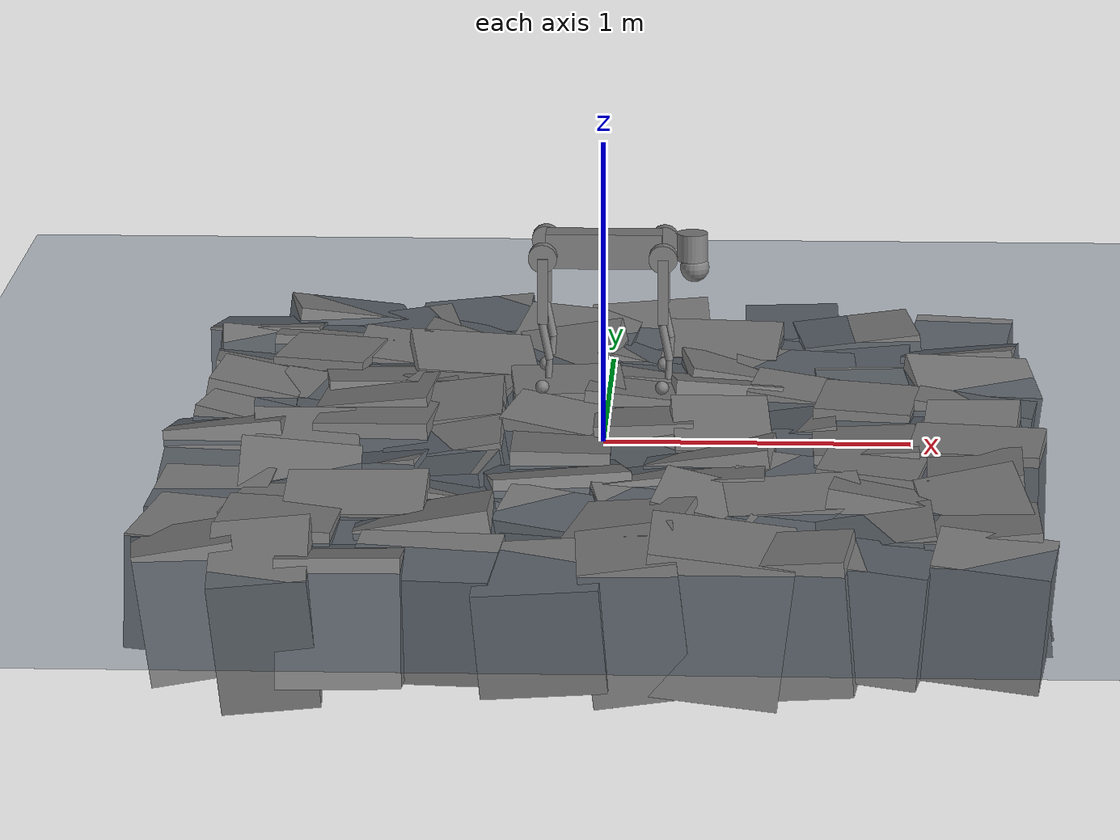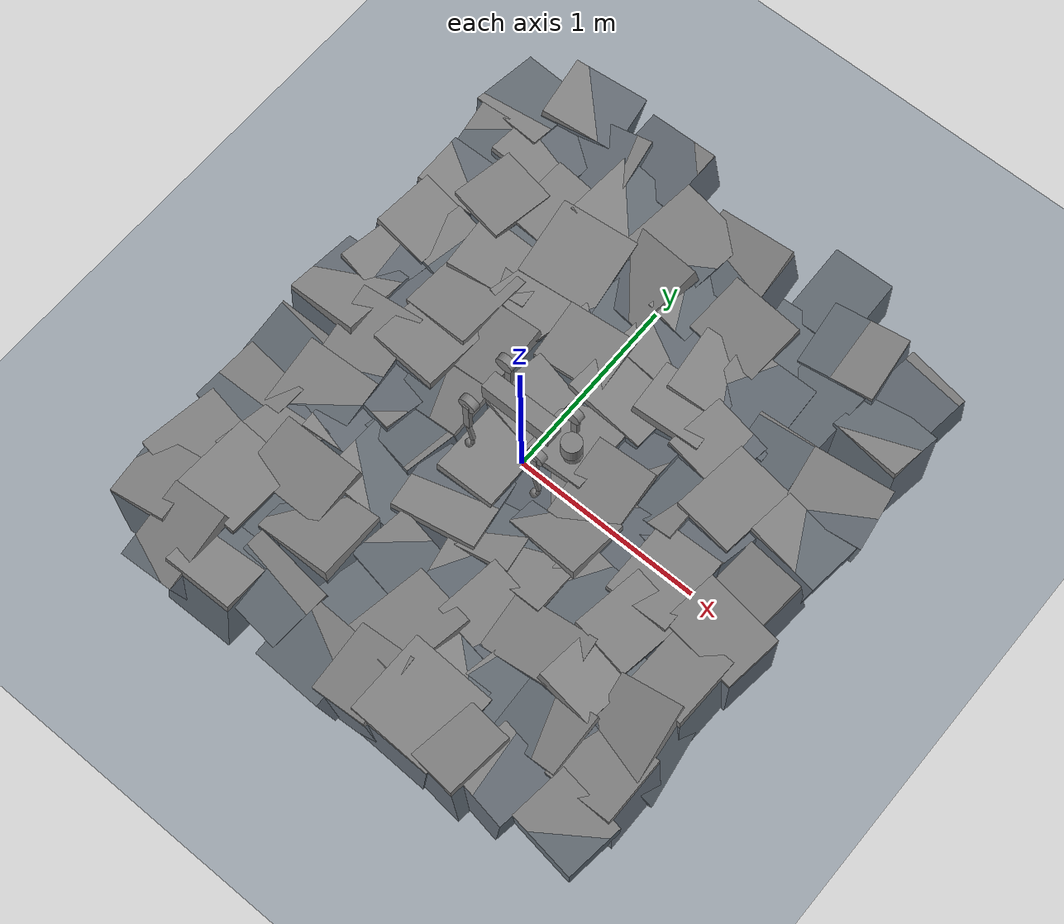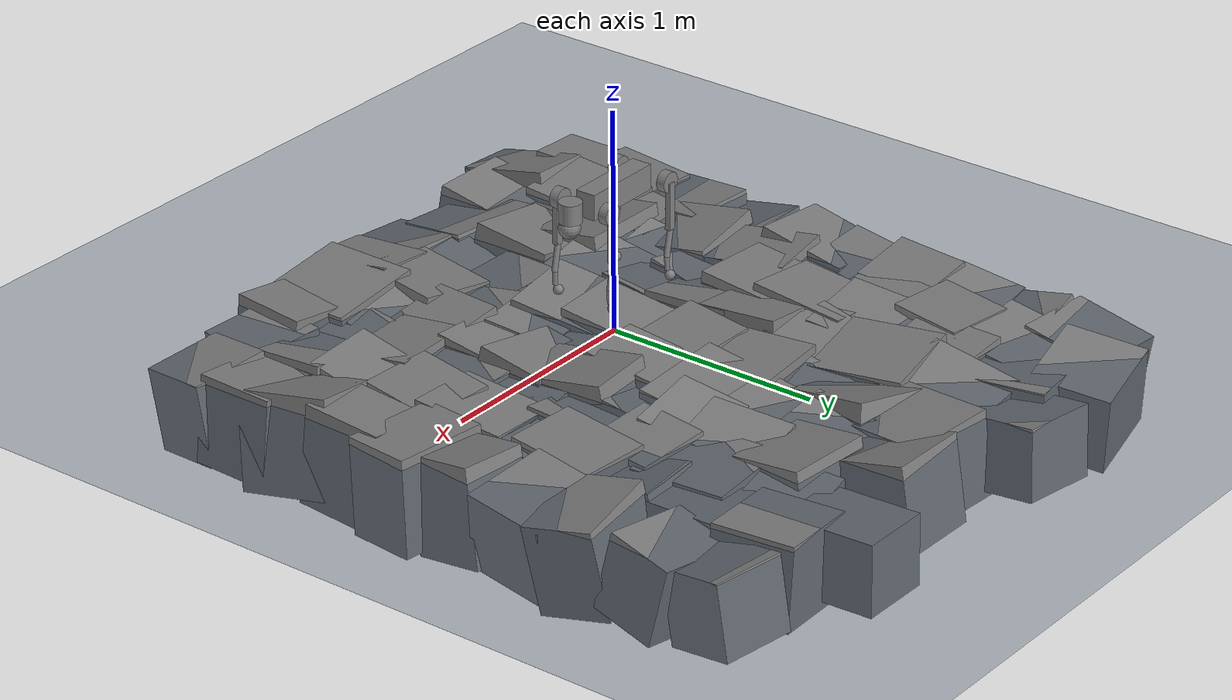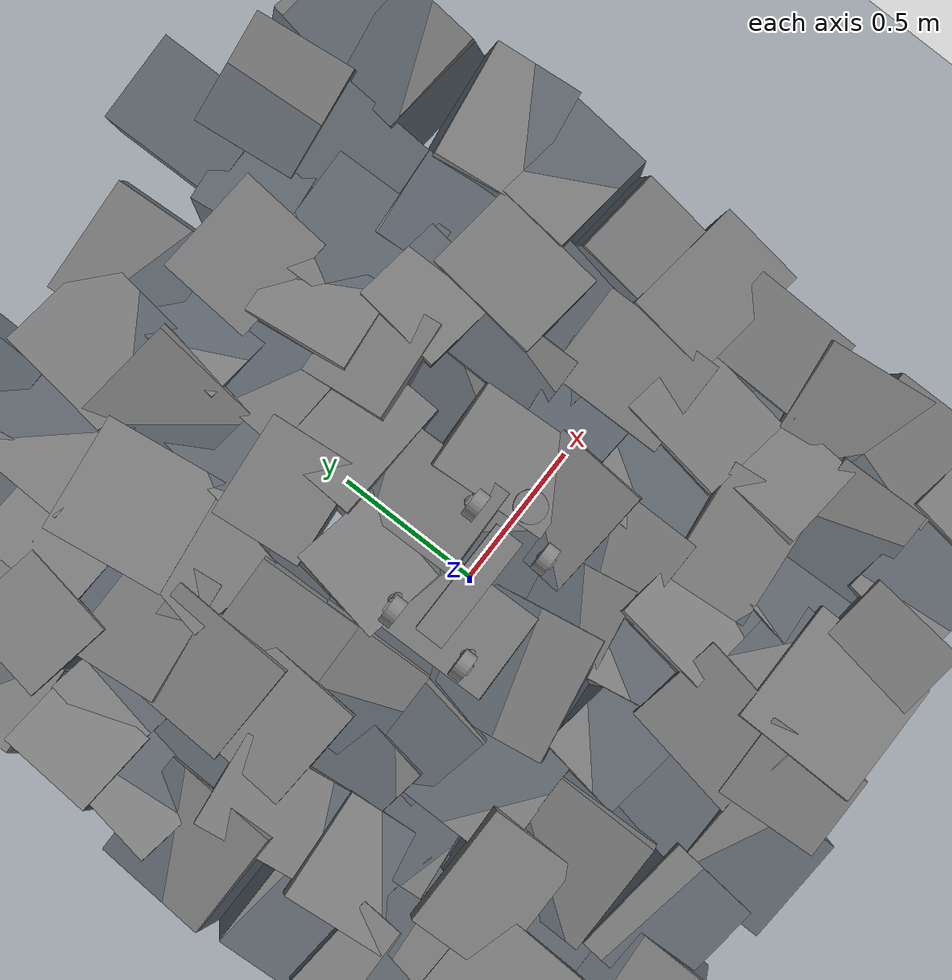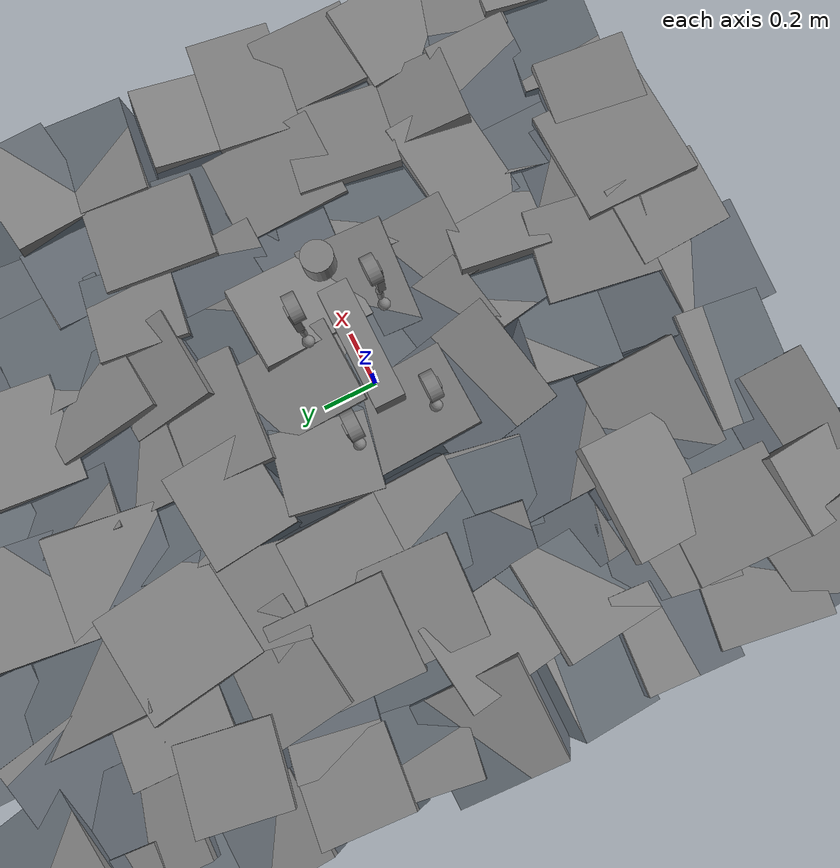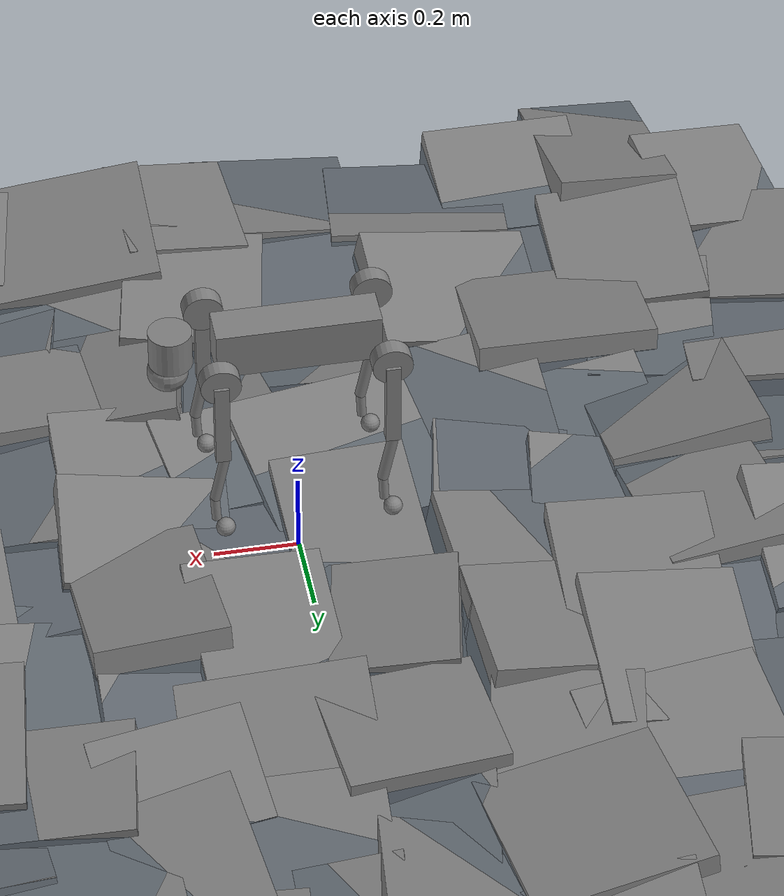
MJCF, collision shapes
<mujoco model="go2 scene">
  <include file="go2.xml" />

  <statistic center="0 0 0.1" extent="0.8" />

  <visual>
    <headlight diffuse="0.6 0.6 0.6" ambient="0.3 0.3 0.3" specular="0 0 0" />
    <rgba haze="0.15 0.25 0.35 1" />
    <global azimuth="-130" elevation="-20" />
  </visual>

  <asset>
    <texture type="skybox" builtin="gradient" rgb1="0.3 0.5 0.7" rgb2="0 0 0" width="512" height="3072" />
    <texture type="2d" name="groundplane" builtin="checker" mark="edge" rgb1="0.2 0.3 0.4" rgb2="0.1 0.2 0.3" markrgb="0.8 0.8 0.8" width="300" height="300" />
    <material name="groundplane" texture="groundplane" texuniform="true" texrepeat="5 5" reflectance="0.2" />
  </asset>

  <worldbody>
    <light pos="0 0 1.5" dir="0 0 -1" directional="true" />
    <geom name="floor" size="0 0 0.05" type="plane" material="groundplane" />
  <geom pos="-1.2304200836680197 -1.1411481662445038 -0.1875" type="box" size="0.15369244909148655 0.17730369953801042 0.2065599356729149" quat="0.9950281246116551 -0.03272921892130598 -0.06742753222850414 0.0655847341855378" /><geom pos="-1.2304200836680197 -0.8760309631619931 -0.1875" type="box" size="0.18509767053117837 0.2102609910016081 0.1871333525612197" quat="0.9963611390440859 0.011661685118724875 0.019775964883568673 -0.08208164786288792" /><geom pos="-1.2304200836680197 -0.5268295472882956 -0.1875" type="box" size="0.17915211086592098 0.182866532464674 0.18494911241374323" quat="0.9979450321557523 0.047034680834500464 0.0032556006696131635 -0.0433918501418337" /><geom pos="-1.2304200836680197 -0.2046684124035616 -0.1875" type="box" size="0.1960684868133751 0.15221288971163183 0.16285439421474324" quat="0.9951650263795967 0.09750686832672985 -0.011764595925236765 0.0007584080211072784" /><geom pos="-1.2304200836680197 0.15702221024068486 -0.1875" type="box" size="0.19499986553604737 0.2075120234207147 0.19790070920004843" quat="0.9942714593516752 -0.09389363391969072 -0.05089553004934249 -0.004230324933370293" /><geom pos="-1.2304200836680197 0.42526026023270846 -0.1875" type="box" size="0.15337056230188606 0.1862008607582152 0.1871164981710325" quat="0.9918492787735699 -0.016961452315007182 0.09865576253257936 -0.07883119846120583" /><geom pos="-1.2304200836680197 0.673205249985795 -0.1875" type="box" size="0.15391514584661392 0.17064103339060688 0.21692910570078203" quat="0.9948317104549019 -0.008276555699482824 0.09468222458287166 -0.03573013919881046" /><geom pos="-1.2304200836680197 0.961666441776519 -0.1875" type="box" size="0.1597095753628612 0.15455909217850985 0.18701825931684926" quat="0.9958321104849504 -0.0717582723207917 0.0460708260392839 0.03235177071943012" /><geom pos="-1.2304200836680197 1.2478956199459685 -0.1875" type="box" size="0.17374419589422446 0.1629538249280565 0.16812558386110993" quat="0.9930770808263292 0.08345055396685366 0.06096590211844292 0.055830774300254876" /><geom pos="-1.2304200836680197 1.523623152676656 -0.1875" type="box" size="0.19545880894449238 0.19495031423544343 0.1678084245576104" quat="0.9962209028893821 -0.07999481127426475 -0.0135063092643714 -0.03102132211099779" /><geom pos="-0.9868049477805465 -1.2588319895213815 -0.1875" type="box" size="0.15162862184125697 0.2104499216651035 0.22007731101455685" quat="0.994088532828927 0.09797606847205581 -0.040055313422534544 0.02417127988777174" /><geom pos="-0.9868049477805465 -0.9107831280568052 -0.1875" type="box" size="0.18208397784240551 0.21099425900354835 0.21359067606836032" quat="0.999205669332894 -0.02698195193863014 0.02356556427979704 -0.017454765044521488" /><geom pos="-0.9868049477805465 -0.6522250394150708 -0.1875" type="box" size="0.15786813261745566 0.21777807577666491 0.18732145214851786" quat="0.9961886852010381 -0.013450545678777794 -0.0022374792008738225 -0.08615207475851011" /><geom pos="-0.9868049477805465 -0.3202517467518553 -0.1875" type="box" size="0.19620871208702975 0.2073857533150183 0.19513367095075113" quat="0.9944675792373986 0.08028743287681644 0.05799541586195119 0.03499562410871009" /><geom pos="-0.9868049477805465 0.04794817033041965 -0.1875" type="box" size="0.1683825240453508 0.20937007306306288 0.20565913026774393" quat="0.9962160372303627 0.05633223522701187 0.022673014297901355 0.06217894227154928" /><geom pos="-0.9868049477805465 0.3572137614443516 -0.1875" type="box" size="0.22159430081705458 0.1846988584878443 0.16444733784413834" quat="0.9949993288440555 -0.055243650548093444 -0.06380410423554483 0.053418264261384005" /><geom pos="-0.9868049477805465 0.6589603535709858 -0.1875" type="box" size="0.17199240719436643 0.16309982299338574 0.1816886001390409" quat="0.9950803234108256 0.0055293320527519795 0.05262550940607111 -0.08375638606941302" /><geom pos="-0.9868049477805465 1.0166007571599711 -0.1875" type="box" size="0.15814968489477774 0.17385406397387576 0.2181122445643997" quat="0.9962134894153872 -0.007824669792756958 0.008770547058832196 -0.08614253045819589" /><geom pos="-0.9868049477805465 1.3781805348023637 -0.1875" type="box" size="0.2093132483422782 0.2219170613392905 0.17976330756230857" quat="0.9972116484303807 -0.071255108853604 0.019411296875346738 -0.010716307696251204" /><geom pos="-0.9868049477805465 1.694917356190346 -0.1875" type="box" size="0.20426945685504744 0.18179027402114217 0.18401215239912938" quat="0.9918747874979005 -0.056582336905500935 0.06862810192014167 0.09095619112048216" /><geom pos="-0.7561439509766648 -1.2704424701368662 -0.1875" type="box" size="0.1904445383064859 0.17493594138722426 0.19889205601727064" quat="0.995657090428045 -0.09261268448440822 -0.005794428087150561 0.007501570241882596" /><geom pos="-0.7561439509766648 -0.9304069842423248 -0.1875" type="box" size="0.15632743518072673 0.17962509619138894 0.16791699305348481" quat="0.9953875639963933 0.03177427250151577 0.007489517984674933 -0.09021031076702334" /><geom pos="-0.7561439509766648 -0.6536669402043485 -0.1875" type="box" size="0.22265833891488812 0.1610158536581003 0.2220095908149298" quat="0.9967584693378255 0.08013998817711467 -0.007046021241496074 0.0006997735001254653" /><geom pos="-0.7561439509766648 -0.35837685155192656 -0.1875" type="box" size="0.1937901303333085 0.17198123378213467 0.15523056718507933" quat="0.9929644436861985 -0.09930595709994482 0.03164355509572564 0.05620165371522577" /><geom pos="-0.7561439509766648 -0.10364365633852479 -0.1875" type="box" size="0.19964989312430584 0.164482422727087 0.15462577898358262" quat="0.9925203976545228 -0.06864134162782141 -0.06394024426714837 -0.07812343836709738" /><geom pos="-0.7561439509766648 0.2101928214059139 -0.1875" type="box" size="0.18898577011648654 0.1963468341591195 0.2211425279493047" quat="0.9990226459893781 -0.03111447799995464 -0.006987027714182384 -0.030607572639682903" /><geom pos="-0.7561439509766648 0.4871905712565836 -0.1875" type="box" size="0.18501141951636715 0.22377799118791253 0.21815809488345755" quat="0.9978932210102445 -0.038924658524864604 -0.04971276002952153 -0.014920854894050612" /><geom pos="-0.7561439509766648 0.775962906924061 -0.1875" type="box" size="0.21901452340517646 0.2195154851495621 0.1971135294800953" quat="0.9962350739235573 -0.061365847736574344 0.004299269938380023 0.06108540328174036" /><geom pos="-0.7561439509766648 1.1436735728761467 -0.1875" type="box" size="0.15509062899929615 0.19389374409091528 0.19692331918952927" quat="0.9980966907328567 0.00938252730787096 0.05723784794377409 -0.02094738389878031" /><geom pos="-0.7561439509766648 1.4900389171173174 -0.1875" type="box" size="0.20423159521414672 0.2140838101663492 0.16990232439307695" quat="0.9949937131486116 0.010445380249851442 -0.04453054780864264 0.08885626110768077" /><geom pos="-0.5025657330678107 -1.182398124529558 -0.1875" type="box" size="0.222622804957554 0.1688814461661239 0.17633323004185578" quat="0.9956163583260504 0.07563797293579513 -0.009376865989205159 -0.05421289946090224" /><geom pos="-0.5025657330678107 -0.8488934703294895 -0.1875" type="box" size="0.21032469422764907 0.1861697581581767 0.20574243721730276" quat="0.9948243064469918 -0.05968343174006501 -0.08176803610942134 0.00874502994843712" /><geom pos="-0.5025657330678107 -0.47443429398026815 -0.1875" type="box" size="0.20262383421221372 0.19688286093531732 0.16704738824896928" quat="0.9945214830354807 -0.08214949109278027 0.06431639284016022 0.006471669501378679" /><geom pos="-0.5025657330678107 -0.19214103958140827 -0.1875" type="box" size="0.1627273629221281 0.15569313301817445 0.16911550497147576" quat="0.9939197414224017 -0.003465967692228216 -0.05653211233353167 -0.09442274595610661" /><geom pos="-0.5025657330678107 0.11434498657995107 -0.1875" type="box" size="0.19606870748640773 0.20467759286335588 0.19169255188711248" quat="0.995913398466186 0.031708217866247806 -0.08387925922888208 0.010740649258415353" /><geom pos="-0.5025657330678107 0.38077234650127667 -0.1875" type="box" size="0.18027562837590907 0.18827811306339828 0.2225983729258768" quat="0.9972599543135328 0.038419413436113665 -0.061766412900420634 0.013470056837689346" /><geom pos="-0.5025657330678107 0.68998089051725 -0.1875" type="box" size="0.17422970948540475 0.16236843906987902 0.20509653906453704" quat="0.9940500152867112 -0.03825973039662063 0.02832714614404335 -0.09797108210998408" /><geom pos="-0.5025657330678107 1.0048567677270759 -0.1875" type="box" size="0.20967246559649672 0.21537750218114635 0.21511782551585196" quat="0.9960691551093892 0.031072044044537724 0.04755107716229191 0.06796809089026781" /><geom pos="-0.5025657330678107 1.3462146883342037 -0.1875" type="box" size="0.19359949353970343 0.21978877326127963 0.18566376417574235" quat="0.9939590503021672 -0.07350543431767068 0.08032669684401463 -0.013783295045607366" /><geom pos="-0.5025657330678107 1.7050937085287954 -0.1875" type="box" size="0.198801794817632 0.18331219842003468 0.15764780867983186" quat="0.9968613515673687 0.05363841472293088 -0.05641049818307086 -0.01442989646627389" /><geom pos="-0.14359676356811457 -1.2636694658139318 -0.1875" type="box" size="0.19387870733356463 0.18355861424495507 0.1744508848565206" quat="0.9961069100899098 0.07868252640020429 -0.03735918010261881 -0.013578489329585785" /><geom pos="-0.14359676356811457 -1.0280628924829016 -0.1875" type="box" size="0.1843548186329801 0.155757139670532 0.15827606749126563" quat="0.9918772412612318 -0.08756188673144999 0.015980790532967803 -0.09086841362089719" /><geom pos="-0.14359676356811457 -0.6881615416258475 -0.1875" type="box" size="0.17520853132843983 0.15782271313633675 0.17330391780487114" quat="0.9941139205562805 0.05051732723801697 0.05194831770638576 -0.08054119996886644" /><geom pos="-0.14359676356811457 -0.33592902598105656 -0.1875" type="box" size="0.22223320347284653 0.21431661776142083 0.18597139437358104" quat="0.9914852713605748 -0.0927849264381247 -0.018835462431471578 0.08940435926682534" /><geom pos="-0.14359676356811457 -0.07646245318444 -0.1875" type="box" size="0.1615610496087131 0.21239575188025936 0.20309715322225577" quat="0.9981238520417312 -0.05844596762059029 0.013372926344925495 0.012410064272297933" /><geom pos="-0.14359676356811457 0.27291991463930154 -0.1875" type="box" size="0.2102526959259246 0.17464578261289432 0.20038393962549944" quat="0.9931793748079843 0.008100251025311523 0.07279096867803592 -0.0907226006475865" /><geom pos="-0.14359676356811457 0.6449705618515891 -0.1875" type="box" size="0.18731459361486424 0.16314567519177622 0.22041366241097543" quat="0.9987150441376013 0.01752158123353519 -0.001690215146514617 0.04752260490613269" /><geom pos="-0.14359676356811457 0.8977164238017212 -0.1875" type="box" size="0.1728192570837686 0.19679638213409387 0.15338379462465915" quat="0.9926318459078768 -0.035463635571511026 0.0855841649186261 -0.07810057462499079" /><geom pos="-0.14359676356811457 1.1333855747971446 -0.1875" type="box" size="0.1910239963832068 0.1980177362320666 0.2024879213384906" quat="0.989292471032775 0.08695764312908369 -0.09829303831761262 -0.0638533763993221" /><geom pos="-0.14359676356811457 1.429365948937019 -0.1875" type="box" size="0.2066995990194955 0.2068543991371084 0.19652162220999134" quat="0.9966444530410896 0.03895730250278918 0.028061286005029558 -0.06629273739918672" /><geom pos="0.13044666571682972 -1.223518887248242 -0.1875" type="box" size="0.15091100098834276 0.18569297913457228 0.22007091450778263" quat="0.9974089905353473 0.0326948226953677 -0.05903544681051222 0.02492328606065224" /><geom pos="0.13044666571682972 -0.939017142426535 -0.1875" type="box" size="0.17326693629010143 0.21487994014834833 0.2181352046042125" quat="0.994801982295834 -0.013364059431141625 -0.05375120204817104 -0.08544721302755598" /><geom pos="0.13044666571682972 -0.631993530743558 -0.1875" type="box" size="0.15471636746558554 0.17486516388434084 0.1660024571251392" quat="0.9926747465596425 0.0480815858334718 0.06839253853960654 0.08722080783045112" /><geom pos="0.13044666571682972 -0.3633491214736493 -0.1875" type="box" size="0.1561053405685311 0.15444778612947838 0.1830567593117166" quat="0.9921560167625956 -0.07782074070502462 -0.04152989576542748 0.08857560880747103" /><geom pos="0.13044666571682972 -0.0613595868305461 -0.1875" type="box" size="0.1640978918995505 0.1811275265896917 0.1673279573956687" quat="0.9957014693256625 0.05609079696269354 -0.0713177416691699 0.018606079705735454" /><geom pos="0.13044666571682972 0.24513979180679857 -0.1875" type="box" size="0.16401022994131997 0.21073981351723325 0.20410705328731776" quat="0.9982161401287268 -0.054832530771794265 -0.020817027523826533 0.011161654032372683" /><geom pos="0.13044666571682972 0.5876702939377196 -0.1875" type="box" size="0.22154940489230202 0.18335480718199929 0.2016152092568711" quat="0.9975528155229081 -0.04403085471605814 0.047711507446209035 -0.02594756505922543" /><geom pos="0.13044666571682972 0.8869845490678494 -0.1875" type="box" size="0.190281201116554 0.17812814603759886 0.1820664442496044" quat="0.9978323421186692 -0.053509381632090194 0.026797216843229454 -0.027372838157181632" /><geom pos="0.13044666571682972 1.1704176247698403 -0.1875" type="box" size="0.20711750036388024 0.19929275723282178 0.15822005615043028" quat="0.9923837125587076 -0.05544470555849195 0.10115193743128341 -0.04322889343513489" /><geom pos="0.13044666571682972 1.5056935793143045 -0.1875" type="box" size="0.20666135469136537 0.19395909427123606 0.19231371309650466" quat="0.9940657900865889 0.10038590944233114 -0.030964129537298008 0.028232903622532363" /><geom pos="0.3751989161046523 -1.176931148511857 -0.1875" type="box" size="0.2235818640700254 0.22098014596114507 0.22491155114221534" quat="0.9982658355304658 0.0031435710012463467 0.05848075627254511 -0.005953210882568109" /><geom pos="0.3751989161046523 -0.8886154580903003 -0.1875" type="box" size="0.20190597011964184 0.20114308506116874 0.18274078431614127" quat="0.9933970465220936 -0.0850688882948313 0.06702653201354664 -0.03785546475345644" /><geom pos="0.3751989161046523 -0.6397403566461436 -0.1875" type="box" size="0.22376154401477874 0.17209137187919818 0.19788035572771043" quat="0.9926686478426255 0.03254591774424036 0.09507521664417344 -0.06715967546483456" /><geom pos="0.3751989161046523 -0.38246500474790257 -0.1875" type="box" size="0.16214778265495505 0.16124331702929423 0.19644838081081298" quat="0.9973587566750121 -0.0664578750349312 -0.029234810838176473 -0.0020462562819986" /><geom pos="0.3751989161046523 -0.1260692347274881 -0.1875" type="box" size="0.20243737820056337 0.16674020939441297 0.19986611498847326" quat="0.9948981362234476 -0.057768128675473464 -0.07460535500281537 -0.035701300443376015" /><geom pos="0.3751989161046523 0.14910191048819255 -0.1875" type="box" size="0.16014033633151667 0.21271523508353665 0.22490989092563096" quat="0.9960344361832941 0.0821323583092634 0.01385775742267087 0.031267238682054034" /><geom pos="0.3751989161046523 0.43022955615833025 -0.1875" type="box" size="0.18281614124169293 0.19633478230128726 0.15138803457524652" quat="0.9936494925578516 -0.05796714202783985 -0.09623355282725884 -0.00629282884649242" /><geom pos="0.3751989161046523 0.6646055486350773 -0.1875" type="box" size="0.18090737490830955 0.15497055064356366 0.20644315175593975" quat="0.9934498599348576 -0.09486039951031562 0.04038903452730441 0.04927074476915721" /><geom pos="0.3751989161046523 0.9123538250866501 -0.1875" type="box" size="0.15336058808229264 0.1878202662760034 0.1989480829117168" quat="0.9937884557549531 -0.041703472567391556 0.08507555063612753 0.05837359221399604" /><geom pos="0.3751989161046523 1.2362246214812687 -0.1875" type="box" size="0.2001702469621203 0.1688836505855354 0.21160324749252063" quat="0.9966661621702961 0.07202967081820004 -0.0009930954918486094 -0.038305371266950085" /><geom pos="0.6226846005182405 -1.2142837112056768 -0.1875" type="box" size="0.18053757604996917 0.17894891084952222 0.21372084674440886" quat="0.9976775462664869 -0.009842195831636655 -0.04354577149169347 -0.051443275965736786" /><geom pos="0.6226846005182405 -0.90293835626549 -0.1875" type="box" size="0.18784290926666547 0.19165195811175934 0.15786640523137724" quat="0.9918584205318033 0.015711148433121054 0.07885418621287561 -0.09875247212993689" /><geom pos="0.6226846005182405 -0.604010871194476 -0.1875" type="box" size="0.2208311756446606 0.1525049482717315 0.20813149368021885" quat="0.9970530327937737 0.047414602240201026 -0.022621134927760234 0.0559051835317779" /><geom pos="0.6226846005182405 -0.307005374667531 -0.1875" type="box" size="0.20908063808985833 0.19656878733212865 0.17262895581029677" quat="0.9976895739908704 0.02811581540120167 0.049003955378807564 -0.0377309850318418" /><geom pos="0.6226846005182405 0.014052812807539894 -0.1875" type="box" size="0.21427629864083886 0.18436067168544693 0.16968976611122946" quat="0.9978244572895786 0.029145000877885473 0.024032778752932117 0.054030980964614644" /><geom pos="0.6226846005182405 0.34481061504156796 -0.1875" type="box" size="0.1633030900512901 0.2099134830858633 0.17019591412296983" quat="0.9963425439049877 -0.023810140989137477 -0.08149375759401431 0.009663325733060297" /><geom pos="0.6226846005182405 0.654910329978911 -0.1875" type="box" size="0.16446519831295228 0.1648086733465469 0.19533290842259377" quat="0.9960202680423678 -0.004344453024090903 0.05908786976706881 -0.06658359424904359" /><geom pos="0.6226846005182405 0.9548767292767004 -0.1875" type="box" size="0.20618958968299125 0.22200453699882966 0.17459233333913374" quat="0.9992684698092846 0.01723378136053859 0.030251201403421166 0.015823616485424415" /><geom pos="0.6226846005182405 1.3252654946776206 -0.1875" type="box" size="0.21206675796986485 0.1582569257849979 0.15021303639957745" quat="0.9955299182333872 -0.03559169348131339 0.06371074410251569 0.059952934400756906" /><geom pos="0.6226846005182405 1.6450137497497517 -0.1875" type="box" size="0.16601833894598195 0.214227383896426 0.15931762248051548" quat="0.9997908692705237 0.014306188030071384 -0.012531429310959862 0.007517578517245386" /><geom pos="0.8595609718557347 -1.1822801894692392 -0.1875" type="box" size="0.1697856439427634 0.16681399413819253 0.1788189263873431" quat="0.9962055569836714 -0.007404725346649121 0.04334076129830585 -0.07510816658311442" /><geom pos="0.8595609718557347 -0.8810963664848548 -0.1875" type="box" size="0.22307156081959192 0.16327039303397373 0.1778010955021132" quat="0.9957901796633134 0.027760121380427313 -0.08625879373128943 0.013809933058230002" /><geom pos="0.8595609718557347 -0.5823979496143274 -0.1875" type="box" size="0.15302699742187556 0.20883135072124165 0.2139348271672446" quat="0.9937896124061203 -0.06611904651604916 0.07555450429223218 -0.04797910839789596" /><geom pos="0.8595609718557347 -0.2892711500284806 -0.1875" type="box" size="0.1618457038844607 0.19384002507866777 0.2175427910176556" quat="0.9962547832732754 -0.01588441908953645 0.03793300513992043 -0.07606036521317493" /><geom pos="0.8595609718557347 -0.02271510888413797 -0.1875" type="box" size="0.17051241642567364 0.21497336493847713 0.20504325404115442" quat="0.9991648652071042 -0.034798056631257485 -0.020814480049084177 0.005042302117424675" /><geom pos="0.8595609718557347 0.22918292968950293 -0.1875" type="box" size="0.17973237866004965 0.20561719003961268 0.16947875864330947" quat="0.9935733832336557 -0.05295632417719308 -0.03804682680008983 -0.09252026172526241" /><geom pos="0.8595609718557347 0.48127301425263846 -0.1875" type="box" size="0.16106015220466197 0.21034380868908342 0.20796216270527504" quat="0.9979397639638306 -0.018429899193050134 0.0198569009487687 -0.05815728501451126" /><geom pos="0.8595609718557347 0.8143988254618604 -0.1875" type="box" size="0.15812990931084378 0.1550788160917767 0.1586809468512913" quat="0.994901646704506 0.09414154657186165 0.0066217867582857425 0.035556075906211626" /><geom pos="0.8595609718557347 1.1451159055047473 -0.1875" type="box" size="0.16971329556147266 0.2107466987437963 0.1559972121272108" quat="0.9990381091829262 0.026504974671012288 -0.02364154582744869 -0.02571808758016513" /><geom pos="0.8595609718557347 1.457460394532558 -0.1875" type="box" size="0.2036199420463993 0.18363917248693587 0.18538618631113693" quat="0.9971475900484316 0.0006218710732074188 -0.048113235411741825 0.05814992274446993" /><geom pos="1.2146270243577155 -1.1500554948329764 -0.1875" type="box" size="0.18333291639763824 0.1550558159048026 0.19171012772887616" quat="0.9957697834427308 0.050693699870824234 0.04034274429958913 -0.06515481684573977" /><geom pos="1.2146270243577155 -0.8876660036007435 -0.1875" type="box" size="0.18246976407302565 0.17917252752741325 0.19895401676330937" quat="0.9987112440231556 -0.015187511491204694 -0.048364448855649986 0.0024638675522006335" /><geom pos="1.2146270243577155 -0.6467605988806129 -0.1875" type="box" size="0.16121216095987106 0.21277433925077077 0.21744291563700682" quat="0.9915950071567574 0.07764114262860583 -0.08179658728889845 0.0634075158084934" /><geom pos="1.2146270243577155 -0.33940156132796817 -0.1875" type="box" size="0.15286073736105538 0.190333111129968 0.22248347785070224" quat="0.9987669564325582 -0.02569397847314948 -0.040250619019699625 -0.013574751459851903" /><geom pos="1.2146270243577155 -0.05292453744290215 -0.1875" type="box" size="0.21347203972744938 0.15569041277748644 0.22244095374088807" quat="0.9977457204225183 0.01692596509317749 0.0011033899251179518 -0.06492897361646686" /><geom pos="1.2146270243577155 0.22106639339219702 -0.1875" type="box" size="0.15427371681995938 0.16378385771150047 0.21882941990310056" quat="0.9947238551661323 0.08620142890037574 -0.02392732105197855 -0.05021203965421644" /><geom pos="1.2146270243577155 0.5748720790035113 -0.1875" type="box" size="0.19896577635395069 0.19297803512921097 0.17940083648995214" quat="0.9956429511722205 -0.03823699108846965 0.06442057976623503 -0.05552508618772134" /><geom pos="1.2146270243577155 0.833169520044136 -0.1875" type="box" size="0.2111413247811191 0.15849348823215653 0.20103238777767832" quat="0.9926343875415692 0.08565889056471442 0.04440836516126613 0.07326270702683373" /><geom pos="1.2146270243577155 1.1890930444546424 -0.1875" type="box" size="0.19369278804549636 0.1522609191033634 0.1760369526137721" quat="0.9928643801699963 -0.09432134104908396 -0.044261717822163475 -0.05800609922915655" /><geom pos="1.2146270243577155 1.4845554917979973 -0.1875" type="box" size="0.17093802113471848 0.15293498006339779 0.1657854903999194" quat="0.9929171204250443 0.09089234770631151 -0.003486156369050148 -0.07643310676037945" /></worldbody>
</mujoco>

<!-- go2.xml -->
<mujoco model="go2">
  <compiler angle="radian" meshdir="assets" autolimits="true" />

  <option cone="elliptic" impratio="100" />

  <default>
    <default class="go2">
      <geom friction="0.4" margin="0.001" condim="1"/>
      <joint axis="0 1 0" damping="0.1" armature="0.01" frictionloss="0.2"/>
      <motor ctrlrange="-23.7 23.7"/>
      <default class="abduction">
        <joint axis="1 0 0" range="-1.0472 1.0472"/>
      </default>
      <default class="hip">
        <default class="front_hip">
          <joint range="-1.5708 3.4907"/>
        </default>
        <default class="back_hip">
          <joint range="-0.5236 4.5379"/>
        </default>
      </default>
      <default class="knee">
        <joint range="-2.7227 -0.83776"/>
        <motor ctrlrange="-45.43 45.43"/>
      </default>
      <default class="visual">
        <geom type="mesh" contype="0" conaffinity="0" group="2"/>
      </default>
      <default class="collision">
        <geom group="3"/>
        <default class="foot">
          <geom size="0.022" pos="-0.002 0 -0.213" priority="1" condim="6"
            friction="0.4 0.02 0.01"/>
        </default>
      </default>
    </default>
  </default>

  <asset>
    <material name="metal" rgba=".9 .95 .95 1" />
    <material name="black" rgba="0 0 0 1" />
    <material name="white" rgba="1 1 1 1" />
    <material name="gray" rgba="0.671705 0.692426 0.774270 1" />
    <material name="transparent" rgba="1 1 1 0.01" />

    <mesh file="base_0.obj" />
    <mesh file="base_1.obj" />
    <mesh file="base_2.obj" />
    <mesh file="base_3.obj" />
    <mesh file="base_4.obj" />
    <mesh file="hip_0.obj" />
    <mesh file="hip_1.obj" />
    <mesh file="thigh_0.obj" />
    <mesh file="thigh_1.obj" />
    <mesh file="thigh_mirror_0.obj" />
    <mesh file="thigh_mirror_1.obj" />
    <mesh file="calf_0.obj" />
    <mesh file="calf_1.obj" />
    <mesh file="calf_mirror_0.obj" />
    <mesh file="calf_mirror_1.obj" />
    <mesh file="foot.obj" />
  </asset>

  <worldbody>
    <body name="base_link" pos="0 0 0.65" childclass="go2">
      <inertial pos="0.021112 0 -0.005366" quat="-0.000543471 0.713435 -0.00173769 0.700719"
        mass="6.921"
        diaginertia="0.107027 0.0980771 0.0244531" />
      <freejoint />
      <geom mesh="base_0" material="black" class="visual" />
      <geom mesh="base_1" material="black" class="visual" />
      <geom mesh="base_2" material="black" class="visual" />
      <geom mesh="base_3" material="white" class="visual" />
      <geom mesh="base_4" material="gray" class="visual" />
      <geom size="0.1881 0.04675 0.057" type="box" class="collision" />
      <geom size="0.05 0.045" pos="0.285 0 0.01" type="cylinder" class="collision" />
      <geom size="0.047" pos="0.293 0 -0.06" class="collision" />
      <site name="imu" pos="-0.02557 0 0.04232" />
      <body name="FL_hip" pos="0.1934 0.0465 0">
        <inertial pos="-0.0054 0.00194 -0.000105" quat="0.497014 0.499245 0.505462 0.498237"
          mass="0.678"
          diaginertia="0.00088403 0.000596003 0.000479967" />
        <joint name="FL_hip_joint" class="abduction" />
        <geom mesh="hip_0" material="metal" class="visual" />
        <geom mesh="hip_1" material="gray" class="visual" />
        <geom size="0.046 0.02" pos="0 0.08 0" quat="1 1 0 0" type="cylinder" class="collision" />
        <body name="FL_thigh" pos="0 0.0955 0">
          <inertial pos="-0.00374 -0.0223 -0.0327" quat="0.829533 0.0847635 -0.0200632 0.551623"
            mass="1.152"
            diaginertia="0.00594973 0.00584149 0.000878787" />
          <joint name="FL_thigh_joint" class="front_hip" />
          <geom mesh="thigh_0" material="metal" class="visual" />
          <geom mesh="thigh_1" material="gray" class="visual" />
          <geom size="0.1065 0.01225 0.017" pos="0 0 -0.1065" quat="0.707107 0 0.707107 0"
            type="box" class="collision" />
          <body name="FL_calf" pos="0 0 -0.213">
            <inertial pos="0.00629595 -0.000622121 -0.141417"
              quat="0.710672 0.00154099 -0.00450087 0.703508"
              mass="0.241352" diaginertia="0.0014901 0.00146356 5.31397e-05" />
            <joint name="FL_calf_joint" class="knee" />
            <geom mesh="calf_0" material="gray" class="visual" />
            <geom mesh="calf_1" material="black" class="visual" />
            <geom size="0.012 0.06" pos="0.008 0 -0.06" quat="0.994493 0 -0.104807 0"
              type="cylinder" class="collision" />
            <geom size="0.011 0.0325" pos="0.02 0 -0.148" quat="0.999688 0 0.0249974 0"
              type="cylinder" class="collision" />
            <geom pos="0 0 -0.213" mesh="foot" class="visual" material="black" />
            <geom name="FL" class="foot" />
            <site name="FL_touch" pos="0 0 -0.213" size="0.027" material="transparent"/>
            <body name="FL_foot" pos="0 0 -0.213"/>
          </body>
        </body>
      </body>
      <body name="FR_hip" pos="0.1934 -0.0465 0">
        <inertial pos="-0.0054 -0.00194 -0.000105" quat="0.498237 0.505462 0.499245 0.497014"
          mass="0.678"
          diaginertia="0.00088403 0.000596003 0.000479967" />
        <joint name="FR_hip_joint" class="abduction" />
        <geom mesh="hip_0" material="metal" class="visual" quat="4.63268e-05 1 0 0" />
        <geom mesh="hip_1" material="gray" class="visual" quat="4.63268e-05 1 0 0" />
        <geom size="0.046 0.02" pos="0 -0.08 0" quat="0.707107 0.707107 0 0" type="cylinder"
          class="collision" />
        <body name="FR_thigh" pos="0 -0.0955 0">
          <inertial pos="-0.00374 0.0223 -0.0327" quat="0.551623 -0.0200632 0.0847635 0.829533"
            mass="1.152"
            diaginertia="0.00594973 0.00584149 0.000878787" />
          <joint name="FR_thigh_joint" class="front_hip" />
          <geom mesh="thigh_mirror_0" material="metal" class="visual" />
          <geom mesh="thigh_mirror_1" material="gray" class="visual" />
          <geom size="0.1065 0.01225 0.017" pos="0 0 -0.1065" quat="0.707107 0 0.707107 0"
            type="box" class="collision" />
          <body name="FR_calf" pos="0 0 -0.213">
            <inertial pos="0.00629595 0.000622121 -0.141417"
              quat="0.703508 -0.00450087 0.00154099 0.710672"
              mass="0.241352" diaginertia="0.0014901 0.00146356 5.31397e-05" />
            <joint name="FR_calf_joint" class="knee" />
            <geom mesh="calf_mirror_0" material="gray" class="visual" />
            <geom mesh="calf_mirror_1" material="black" class="visual" />
            <geom size="0.013 0.06" pos="0.01 0 -0.06" quat="0.995004 0 -0.0998334 0"
              type="cylinder" class="collision" />
            <geom size="0.011 0.0325" pos="0.02 0 -0.148" quat="0.999688 0 0.0249974 0"
              type="cylinder" class="collision" />
            <geom pos="0 0 -0.213" mesh="foot" class="visual" material="black" />
            <geom name="FR" class="foot" />
            <site name="FR_touch" pos="0 0 -0.213" size="0.027" material="transparent"/>
            <body name="FR_foot" pos="0 0 -0.213"/>
          </body>
        </body>
      </body>
      <body name="RL_hip" pos="-0.1934 0.0465 0">
        <inertial pos="0.0054 0.00194 -0.000105" quat="0.505462 0.498237 0.497014 0.499245"
          mass="0.678"
          diaginertia="0.00088403 0.000596003 0.000479967" />
        <joint name="RL_hip_joint" class="abduction" />
        <geom mesh="hip_0" material="metal" class="visual" quat="4.63268e-05 0 1 0" />
        <geom mesh="hip_1" material="gray" class="visual" quat="4.63268e-05 0 1 0" />
        <geom size="0.046 0.02" pos="0 0.08 0" quat="0.707107 0.707107 0 0" type="cylinder"
          class="collision" />
        <body name="RL_thigh" pos="0 0.0955 0">
          <inertial pos="-0.00374 -0.0223 -0.0327" quat="0.829533 0.0847635 -0.0200632 0.551623"
            mass="1.152"
            diaginertia="0.00594973 0.00584149 0.000878787" />
          <joint name="RL_thigh_joint" class="back_hip" />
          <geom mesh="thigh_0" material="metal" class="visual" />
          <geom mesh="thigh_1" material="gray" class="visual" />
          <geom size="0.1065 0.01225 0.017" pos="0 0 -0.1065" quat="0.707107 0 0.707107 0"
            type="box" class="collision" />
          <body name="RL_calf" pos="0 0 -0.213">
            <inertial pos="0.00629595 -0.000622121 -0.141417"
              quat="0.710672 0.00154099 -0.00450087 0.703508"
              mass="0.241352" diaginertia="0.0014901 0.00146356 5.31397e-05" />
            <joint name="RL_calf_joint" class="knee" />
            <geom mesh="calf_0" material="gray" class="visual" />
            <geom mesh="calf_1" material="black" class="visual" />
            <geom size="0.013 0.06" pos="0.01 0 -0.06" quat="0.995004 0 -0.0998334 0"
              type="cylinder" class="collision" />
            <geom size="0.011 0.0325" pos="0.02 0 -0.148" quat="0.999688 0 0.0249974 0"
              type="cylinder" class="collision" />
            <geom pos="0 0 -0.213" mesh="foot" class="visual" material="black" />
            <geom name="RL" class="foot" />
            <site name="RL_touch" pos="0 0 -0.213" size="0.027" material="transparent"/>
            <body name="RL_foot" pos="0 0 -0.213" />
          </body>
        </body>
      </body>
      <body name="RR_hip" pos="-0.1934 -0.0465 0">
        <inertial pos="0.0054 -0.00194 -0.000105" quat="0.499245 0.497014 0.498237 0.505462"
          mass="0.678"
          diaginertia="0.00088403 0.000596003 0.000479967" />
        <joint name="RR_hip_joint" class="abduction" />
        <geom mesh="hip_0" material="metal" class="visual"
          quat="2.14617e-09 4.63268e-05 4.63268e-05 -1" />
        <geom mesh="hip_1" material="gray" class="visual"
          quat="2.14617e-09 4.63268e-05 4.63268e-05 -1" />
        <geom size="0.046 0.02" pos="0 -0.08 0" quat="0.707107 0.707107 0 0" type="cylinder"
          class="collision" />
        <body name="RR_thigh" pos="0 -0.0955 0">
          <inertial pos="-0.00374 0.0223 -0.0327" quat="0.551623 -0.0200632 0.0847635 0.829533"
            mass="1.152"
            diaginertia="0.00594973 0.00584149 0.000878787" />
          <joint name="RR_thigh_joint" class="back_hip" />
          <geom mesh="thigh_mirror_0" material="metal" class="visual" />
          <geom mesh="thigh_mirror_1" material="gray" class="visual" />
          <geom size="0.1065 0.01225 0.017" pos="0 0 -0.1065" quat="0.707107 0 0.707107 0"
            type="box" class="collision" />
          <body name="RR_calf" pos="0 0 -0.213">
            <inertial pos="0.00629595 0.000622121 -0.141417"
              quat="0.703508 -0.00450087 0.00154099 0.710672"
              mass="0.241352" diaginertia="0.0014901 0.00146356 5.31397e-05" />
            <joint name="RR_calf_joint" class="knee" />
            <geom mesh="calf_mirror_0" material="gray" class="visual" />
            <geom mesh="calf_mirror_1" material="black" class="visual" />
            <geom size="0.013 0.06" pos="0.01 0 -0.06" quat="0.995004 0 -0.0998334 0"
              type="cylinder" class="collision" />
            <geom size="0.011 0.0325" pos="0.02 0 -0.148" quat="0.999688 0 0.0249974 0"
              type="cylinder" class="collision" />
            <geom pos="0 0 -0.213" mesh="foot" class="visual" material="black" />
            <geom name="RR" class="foot" />
            <site name="RR_touch" pos="0 0 -0.213" size="0.027" material="transparent"/>
            <body name="RR_foot" pos="0 0 -0.213"/>
          </body>
        </body>
      </body>
    </body>
  </worldbody>

  <actuator>
    <motor class="abduction" name="FR_hip" joint="FR_hip_joint" />
    <motor class="hip" name="FR_thigh" joint="FR_thigh_joint" />
    <motor class="knee" name="FR_calf" joint="FR_calf_joint" />
    <motor class="abduction" name="FL_hip" joint="FL_hip_joint" />
    <motor class="hip" name="FL_thigh" joint="FL_thigh_joint" />
    <motor class="knee" name="FL_calf" joint="FL_calf_joint" />
    <motor class="abduction" name="RR_hip" joint="RR_hip_joint" />
    <motor class="hip" name="RR_thigh" joint="RR_thigh_joint" />
    <motor class="knee" name="RR_calf" joint="RR_calf_joint" />
    <motor class="abduction" name="RL_hip" joint="RL_hip_joint" />
    <motor class="hip" name="RL_thigh" joint="RL_thigh_joint" />
    <motor class="knee" name="RL_calf" joint="RL_calf_joint" />
  </actuator>

  <sensor>
    <jointpos name="FR_hip_pos" joint="FR_hip_joint" />
    <jointpos name="FR_thigh_pos" joint="FR_thigh_joint" />
    <jointpos name="FR_calf_pos" joint="FR_calf_joint" />
    <jointpos name="FL_hip_pos" joint="FL_hip_joint" />
    <jointpos name="FL_thigh_pos" joint="FL_thigh_joint" />
    <jointpos name="FL_calf_pos" joint="FL_calf_joint" />
    <jointpos name="RR_hip_pos" joint="RR_hip_joint" />
    <jointpos name="RR_thigh_pos" joint="RR_thigh_joint" />
    <jointpos name="RR_calf_pos" joint="RR_calf_joint" />
    <jointpos name="RL_hip_pos" joint="RL_hip_joint" />
    <jointpos name="RL_thigh_pos" joint="RL_thigh_joint" />
    <jointpos name="RL_calf_pos" joint="RL_calf_joint" />

    <jointvel name="FR_hip_vel" joint="FR_hip_joint" />
    <jointvel name="FR_thigh_vel" joint="FR_thigh_joint" />
    <jointvel name="FR_calf_vel" joint="FR_calf_joint" />
    <jointvel name="FL_hip_vel" joint="FL_hip_joint" />
    <jointvel name="FL_thigh_vel" joint="FL_thigh_joint" />
    <jointvel name="FL_calf_vel" joint="FL_calf_joint" />
    <jointvel name="RR_hip_vel" joint="RR_hip_joint" />
    <jointvel name="RR_thigh_vel" joint="RR_thigh_joint" />
    <jointvel name="RR_calf_vel" joint="RR_calf_joint" />
    <jointvel name="RL_hip_vel" joint="RL_hip_joint" />
    <jointvel name="RL_thigh_vel" joint="RL_thigh_joint" />
    <jointvel name="RL_calf_vel" joint="RL_calf_joint" />

    <jointactuatorfrc name="FR_hip_torque" joint="FR_hip_joint" noise="0.01" />
    <jointactuatorfrc name="FR_thigh_torque" joint="FR_thigh_joint" noise="0.01" />
    <jointactuatorfrc name="FR_calf_torque" joint="FR_calf_joint" noise="0.01" />
    <jointactuatorfrc name="FL_hip_torque" joint="FL_hip_joint" noise="0.01" />
    <jointactuatorfrc name="FL_thigh_torque" joint="FL_thigh_joint" noise="0.01" />
    <jointactuatorfrc name="FL_calf_torque" joint="FL_calf_joint" noise="0.01" />
    <jointactuatorfrc name="RR_hip_torque" joint="RR_hip_joint" noise="0.01" />
    <jointactuatorfrc name="RR_thigh_torque" joint="RR_thigh_joint" noise="0.01" />
    <jointactuatorfrc name="RR_calf_torque" joint="RR_calf_joint" noise="0.01" />
    <jointactuatorfrc name="RL_hip_torque" joint="RL_hip_joint" noise="0.01" />
    <jointactuatorfrc name="RL_thigh_torque" joint="RL_thigh_joint" noise="0.01" />
    <jointactuatorfrc name="RL_calf_torque" joint="RL_calf_joint" noise="0.01" />

    <framequat name="imu_quat" objtype="site" objname="imu" />
    <gyro name="imu_gyro" site="imu" />
    <accelerometer name="imu_acc" site="imu" />

    <framepos name="frame_pos" objtype="site" objname="imu" />
    <framelinvel name="frame_vel" objtype="site" objname="imu" />

    <touch name="FR_touch" site="FR_touch" />
    <touch name="FL_touch" site="FL_touch" />
    <touch name="RR_touch" site="RR_touch" />
    <touch name="RL_touch" site="RL_touch" />
  </sensor>

  <keyframe>
    <key name="home" qpos="0 0 0.1 1 0 0 0 0.3 1.5 -2.7 -0.15 1.2 -2.7 0.5 1.2 -2.7 -0.5 1.2 -2.7"
         ctrl="0 0 0 0 0 0 0 0 0 0 0 0" />
  </keyframe>
</mujoco>
